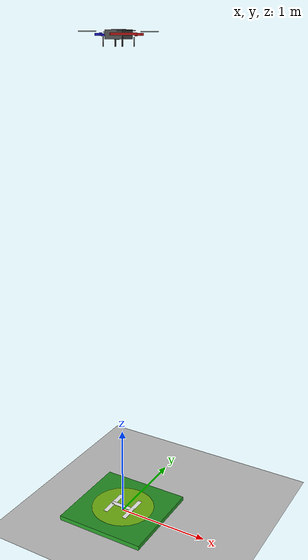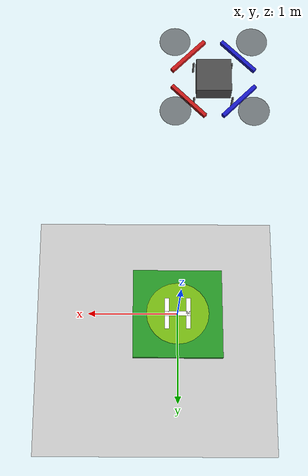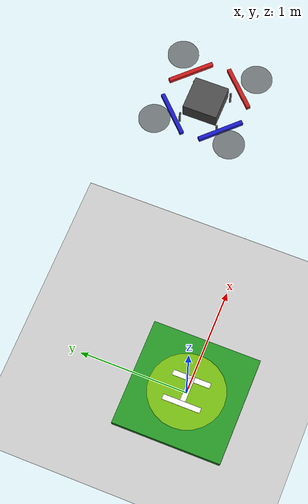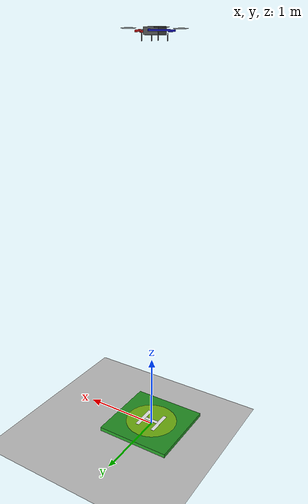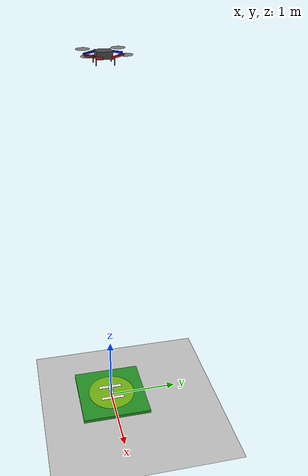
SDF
<?xml version="1.0"?>
<sdf version="1.6">
  <world name="landing_world">

    <!-- Lighting -->
    <include>
      <uri>model://sun</uri>
    </include>

    <!-- Ground plane -->
    <include>
      <uri>model://ground_plane</uri>
    </include>

    <!-- Physics configuration -->
    <physics type="ode">
      <max_step_size>0.002</max_step_size>
      <real_time_factor>1</real_time_factor>
      <real_time_update_rate>500</real_time_update_rate>
    </physics>

    <!-- ROS2 Gazebo state plugin — provides get/set entity state services -->
    <plugin name="gazebo_ros_state" filename="libgazebo_ros_state.so">
      <ros>
        <namespace>/gazebo</namespace>
      </ros>
      <update_rate>50.0</update_rate>
    </plugin>

    <!-- ROS2 Gazebo properties plugin -->
    <plugin name="gazebo_ros_properties" filename="libgazebo_ros_properties.so">
      <ros>
        <namespace>/gazebo</namespace>
      </ros>
    </plugin>

    <!-- ==================== QUADROTOR DRONE ==================== -->
    <model name="quadrotor">
      <static>false</static>
      <pose>0 0 5 0 0 0</pose>
      <link name="base_link">
        <gravity>false</gravity>
        <inertial>
          <mass>1.5</mass>
          <inertia>
            <ixx>0.035</ixx>
            <iyy>0.035</iyy>
            <izz>0.06</izz>
            <ixy>0</ixy>
            <ixz>0</ixz>
            <iyz>0</iyz>
          </inertia>
        </inertial>

        <!-- Central body -->
        <collision name="body_collision">
          <geometry>
            <box><size>0.18 0.18 0.08</size></box>
          </geometry>
        </collision>
        <visual name="body_visual">
          <geometry>
            <box><size>0.18 0.18 0.08</size></box>
          </geometry>
          <material>
            <ambient>0.2 0.2 0.2 1</ambient>
            <diffuse>0.3 0.3 0.3 1</diffuse>
          </material>
        </visual>

        <!-- Front-right arm (red) -->
        <visual name="arm_fr">
          <pose>0.13 -0.13 0 0 0 0.785</pose>
          <geometry><box><size>0.24 0.02 0.02</size></box></geometry>
          <material>
            <ambient>0.6 0.1 0.1 1</ambient>
            <diffuse>0.8 0.1 0.1 1</diffuse>
          </material>
        </visual>
        <visual name="prop_fr">
          <pose>0.2 -0.2 0.025 0 0 0</pose>
          <geometry><cylinder><radius>0.08</radius><length>0.005</length></cylinder></geometry>
          <material><diffuse>0.2 0.2 0.2 0.6</diffuse></material>
        </visual>

        <!-- Front-left arm (red) -->
        <visual name="arm_fl">
          <pose>0.13 0.13 0 0 0 -0.785</pose>
          <geometry><box><size>0.24 0.02 0.02</size></box></geometry>
          <material>
            <ambient>0.6 0.1 0.1 1</ambient>
            <diffuse>0.8 0.1 0.1 1</diffuse>
          </material>
        </visual>
        <visual name="prop_fl">
          <pose>0.2 0.2 0.025 0 0 0</pose>
          <geometry><cylinder><radius>0.08</radius><length>0.005</length></cylinder></geometry>
          <material><diffuse>0.2 0.2 0.2 0.6</diffuse></material>
        </visual>

        <!-- Back-right arm (blue) -->
        <visual name="arm_br">
          <pose>-0.13 -0.13 0 0 0 -0.785</pose>
          <geometry><box><size>0.24 0.02 0.02</size></box></geometry>
          <material>
            <ambient>0.1 0.1 0.6 1</ambient>
            <diffuse>0.1 0.1 0.8 1</diffuse>
          </material>
        </visual>
        <visual name="prop_br">
          <pose>-0.2 -0.2 0.025 0 0 0</pose>
          <geometry><cylinder><radius>0.08</radius><length>0.005</length></cylinder></geometry>
          <material><diffuse>0.2 0.2 0.2 0.6</diffuse></material>
        </visual>

        <!-- Back-left arm (blue) -->
        <visual name="arm_bl">
          <pose>-0.13 0.13 0 0 0 0.785</pose>
          <geometry><box><size>0.24 0.02 0.02</size></box></geometry>
          <material>
            <ambient>0.1 0.1 0.6 1</ambient>
            <diffuse>0.1 0.1 0.8 1</diffuse>
          </material>
        </visual>
        <visual name="prop_bl">
          <pose>-0.2 0.2 0.025 0 0 0</pose>
          <geometry><cylinder><radius>0.08</radius><length>0.005</length></cylinder></geometry>
          <material><diffuse>0.2 0.2 0.2 0.6</diffuse></material>
        </visual>

        <!-- Landing legs -->
        <visual name="leg_fl">
          <pose>0.1 0.1 -0.06 0 0 0</pose>
          <geometry><cylinder><radius>0.005</radius><length>0.08</length></cylinder></geometry>
          <material><diffuse>0.4 0.4 0.4 1</diffuse></material>
        </visual>
        <visual name="leg_fr">
          <pose>0.1 -0.1 -0.06 0 0 0</pose>
          <geometry><cylinder><radius>0.005</radius><length>0.08</length></cylinder></geometry>
          <material><diffuse>0.4 0.4 0.4 1</diffuse></material>
        </visual>
        <visual name="leg_bl">
          <pose>-0.1 0.1 -0.06 0 0 0</pose>
          <geometry><cylinder><radius>0.005</radius><length>0.08</length></cylinder></geometry>
          <material><diffuse>0.4 0.4 0.4 1</diffuse></material>
        </visual>
        <visual name="leg_br">
          <pose>-0.1 -0.1 -0.06 0 0 0</pose>
          <geometry><cylinder><radius>0.005</radius><length>0.08</length></cylinder></geometry>
          <material><diffuse>0.4 0.4 0.4 1</diffuse></material>
        </visual>
      </link>
    </model>

    <!-- ==================== LANDING PLATFORM ==================== -->
    <model name="landing_platform">
      <static>false</static>
      <pose>0 0 0.025 0 0 0</pose>
      <link name="platform_link">
        <gravity>false</gravity>
        <inertial>
          <mass>10.0</mass>
          <inertia>
            <ixx>0.85</ixx>
            <iyy>0.85</iyy>
            <izz>1.67</izz>
            <ixy>0</ixy>
            <ixz>0</ixz>
            <iyz>0</iyz>
          </inertia>
        </inertial>

        <collision name="collision">
          <geometry>
            <box><size>1.0 1.0 0.05</size></box>
          </geometry>
        </collision>
        <visual name="base_visual">
          <geometry>
            <box><size>1.0 1.0 0.05</size></box>
          </geometry>
          <material>
            <ambient>0.1 0.4 0.1 1</ambient>
            <diffuse>0.15 0.6 0.15 1</diffuse>
          </material>
        </visual>

        <!-- Helipad H marker -->
        <visual name="h_left">
          <pose>-0.12 0 0.026 0 0 0</pose>
          <geometry><box><size>0.05 0.35 0.001</size></box></geometry>
          <material><diffuse>1 1 1 1</diffuse></material>
        </visual>
        <visual name="h_right">
          <pose>0.12 0 0.026 0 0 0</pose>
          <geometry><box><size>0.05 0.35 0.001</size></box></geometry>
          <material><diffuse>1 1 1 1</diffuse></material>
        </visual>
        <visual name="h_bar">
          <pose>0 0 0.026 0 0 0</pose>
          <geometry><box><size>0.29 0.05 0.001</size></box></geometry>
          <material><diffuse>1 1 1 1</diffuse></material>
        </visual>

        <!-- Yellow circle -->
        <visual name="circle">
          <pose>0 0 0.0255 0 0 0</pose>
          <geometry><cylinder><radius>0.35</radius><length>0.001</length></cylinder></geometry>
          <material><diffuse>1 1 0 0.4</diffuse></material>
        </visual>
      </link>
    </model>

    <!-- Camera starting position -->
    <gui fullscreen="0">
      <camera name="user_camera">
        <pose>-4 -8 8 0 0.6 1.1</pose>
      </camera>
    </gui>

  </world>
</sdf>
